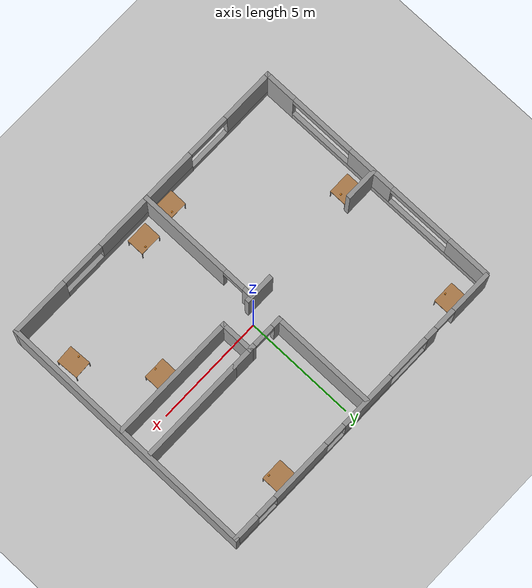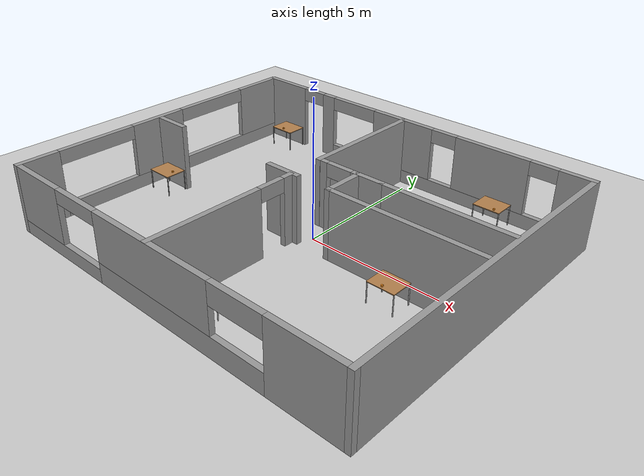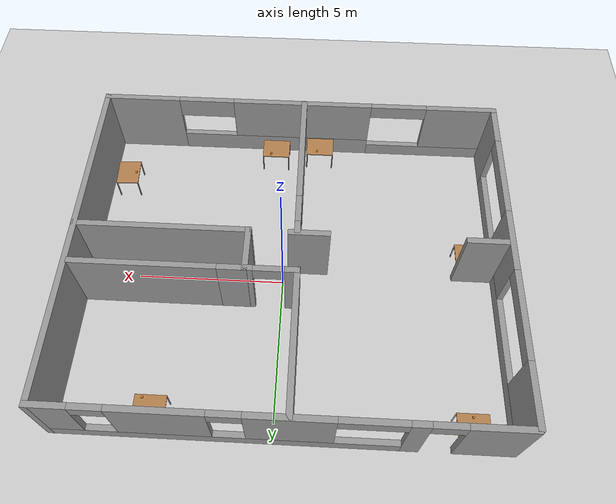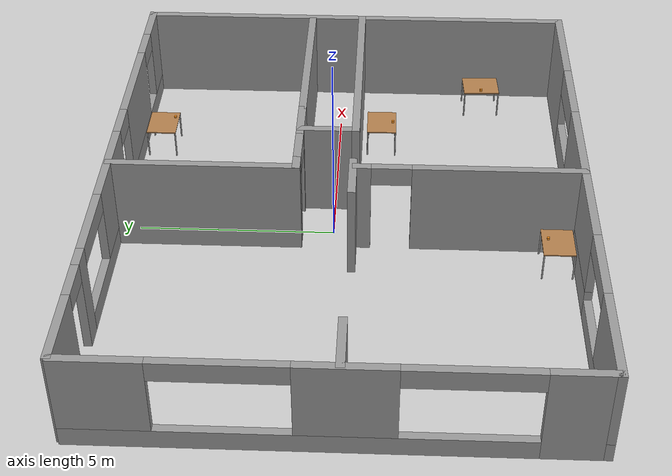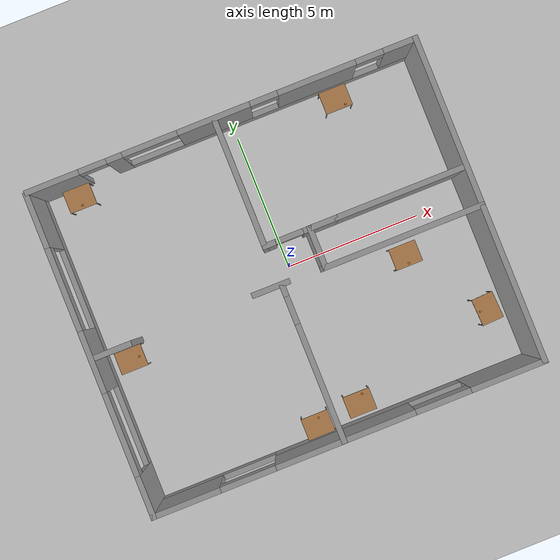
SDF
<sdf version="1.4">
 <world name="default">
  <light name="sun" type="directional">
   <pose>0 0 10 0 -0 0</pose>
   <diffuse>0.8 0.8 0.8 1</diffuse>
   <specular>0.2 0.2 0.2 1</specular>
   <attenuation>
    <range>1000</range>
    <constant>0.9</constant>
    <linear>0.01</linear>
    <quadratic>0.001</quadratic>
   </attenuation>
   <direction>-0.5 0.1 -0.9</direction>
  </light>
  <model name="ground_plane">
   <static>1</static>
   <link name="link">
    <collision name="collision">
     <geometry><plane><normal>0 0 1</normal><size>100 100</size></plane></geometry>
     <surface><friction><ode><mu>100</mu><mu2>50</mu2></ode></friction></surface>
    </collision>
    <visual name="visual">
     <cast_shadows>0</cast_shadows>
     <geometry><plane><normal>0 0 1</normal><size>100 100</size></plane></geometry>
     <material>
      <script><uri>file://media/materials/scripts/gazebo.material</uri><name>Gazebo/Grey</name></script>
     </material>
    </visual>
    <velocity_decay><linear>0</linear><angular>0</angular></velocity_decay>
   </link>
  </model>
  <physics type="ode">
   <max_step_size>0.001</max_step_size>
   <real_time_factor>1</real_time_factor>
   <real_time_update_rate>1000</real_time_update_rate>
   <gravity>0 0 -9.8</gravity>
  </physics>
  <scene><ambient>0.4 0.4 0.4 1</ambient><background>0.7 0.7 0.7 1</background><shadows>1</shadows></scene>
  <model name="ubrhome">
   <link name="Wall_11">
    <collision name="Wall_11_Collision">
     <geometry><box><size>4.81137 0.2 2.5</size></box></geometry>
     <pose>0 0 1.25 0 -0 0</pose>
    </collision>
    <visual name="Wall_11_Visual">
     <pose>0 0 1.25 0 -0 0</pose>
     <geometry><box><size>4.81137 0.2 2.5</size></box></geometry>
     <material>
      <script><uri>file://media/materials/scripts/gazebo.material</uri><name>Gazebo/Grey</name></script>
     </material>
    </visual>
    <velocity_decay><linear>0</linear><angular>0</angular></velocity_decay>
    <pose>0.572091 1.60248 0 0 0 -1.5708</pose>
   </link>
   <link name="Wall_13">
    <collision name="Wall_13_Collision">
     <geometry><box><size>1.38413 0.2 2.5</size></box></geometry>
     <pose>0 0 1.25 0 -0 0</pose>
    </collision>
    <visual name="Wall_13_Visual">
     <pose>0 0 1.25 0 -0 0</pose>
     <geometry><box><size>1.38413 0.2 2.5</size></box></geometry>
     <material>
      <script><uri>file://media/materials/scripts/gazebo.material</uri><name>Gazebo/Grey</name></script>
     </material>
    </visual>
    <velocity_decay><linear>0</linear><angular>0</angular></velocity_decay>
    <pose>0.245062 -2.08964 0 0 -0 3.14159</pose>
   </link>
   <link name="Wall_15">
    <collision name="Wall_15_Collision">
     <geometry><box><size>1.5133 0.2 2.5</size></box></geometry>
     <pose>0 0 1.25 0 -0 0</pose>
    </collision>
    <visual name="Wall_15_Visual">
     <pose>0 0 1.25 0 -0 0</pose>
     <geometry><box><size>1.5133 0.2 2.5</size></box></geometry>
     <material>
      <script><uri>file://media/materials/scripts/gazebo.material</uri><name>Gazebo/Grey</name></script>
     </material>
    </visual>
    <velocity_decay><linear>0</linear><angular>0</angular></velocity_decay>
    <pose>-5.53973 -2.06637 0 0 -0 0</pose>
   </link>
   <link name="Wall_17">
    <pose>0.632057 -4.95392 0 0 0 -1.5708</pose>
    <visual name="Wall_17_Visual_0">
     <pose>-2.65152 0 1.25 0 -0 0</pose>
     <geometry><box><size>0.465914 0.2 2.5</size></box></geometry>
     <material>
      <script><uri>file://media/materials/scripts/gazebo.material</uri><name>Gazebo/Grey</name></script>
     </material>
    </visual>
    <collision name="Wall_17_Collision_0">
     <geometry><box><size>0.465914 0.2 2.5</size></box></geometry>
     <pose>-2.65152 0 1.25 0 -0 0</pose>
    </collision>
    <visual name="Wall_17_Visual_1">
     <pose>0.732957 0 1.25 0 -0 0</pose>
     <geometry><box><size>4.30304 0.2 2.5</size></box></geometry>
     <material>
      <script><uri>file://media/materials/scripts/gazebo.material</uri><name>Gazebo/Grey</name></script>
     </material>
    </visual>
    <collision name="Wall_17_Collision_1">
     <geometry><box><size>4.30304 0.2 2.5</size></box></geometry>
     <pose>0.732957 0 1.25 0 -0 0</pose>
    </collision>
    <visual name="Wall_17_Visual_2">
     <pose>-1.91856 0 2.25 0 -0 0</pose>
     <geometry><box><size>1 0.2 0.5</size></box></geometry>
     <material>
      <script><uri>file://media/materials/scripts/gazebo.material</uri><name>Gazebo/Grey</name></script>
     </material>
    </visual>
    <collision name="Wall_17_Collision_2">
     <geometry><box><size>1 0.2 0.5</size></box></geometry>
     <pose>-1.91856 0 2.25 0 -0 0</pose>
    </collision>
    <velocity_decay><linear>0</linear><angular>0</angular></velocity_decay>
   </link>
   <link name="Wall_19">
    <collision name="Wall_19_Collision">
     <geometry><box><size>5.86812 0.2 2.5</size></box></geometry>
     <pose>0 0 1.25 0 -0 0</pose>
    </collision>
    <visual name="Wall_19_Visual">
     <pose>0 0 1.25 0 -0 0</pose>
     <geometry><box><size>5.86812 0.2 2.5</size></box></geometry>
     <material>
      <script><uri>file://media/materials/scripts/gazebo.material</uri><name>Gazebo/Grey</name></script>
     </material>
    </visual>
    <velocity_decay><linear>0</linear><angular>0</angular></velocity_decay>
    <pose>5.04379 -2.1121 0 0 -0 3.14159</pose>
   </link>
   <link name="Wall_20">
    <collision name="Wall_20_Collision">
     <geometry><box><size>1.60857 0.2 2.5</size></box></geometry>
     <pose>0 0 1.25 0 -0 0</pose>
    </collision>
    <visual name="Wall_20_Visual">
     <pose>0 0 1.25 0 -0 0</pose>
     <geometry><box><size>1.60857 0.2 2.5</size></box></geometry>
     <material>
      <script><uri>file://media/materials/scripts/gazebo.material</uri><name>Gazebo/Grey</name></script>
     </material>
    </visual>
    <velocity_decay><linear>0</linear><angular>0</angular></velocity_decay>
    <pose>2.20973 -1.40781 0 0 -0 1.5708</pose>
   </link>
   <link name="Wall_22">
    <pose>1.37419 -0.698783 0 0 -0 0</pose>
    <visual name="Wall_22_Visual_0">
     <pose>-0.650736 0 1.25 0 -0 0</pose>
     <geometry><box><size>0.481438 0.2 2.5</size></box></geometry>
     <material>
      <script><uri>file://media/materials/scripts/gazebo.material</uri><name>Gazebo/Grey</name></script>
     </material>
    </visual>
    <collision name="Wall_22_Collision_0">
     <geometry><box><size>0.481438 0.2 2.5</size></box></geometry>
     <pose>-0.650736 0 1.25 0 -0 0</pose>
    </collision>
    <visual name="Wall_22_Visual_1">
     <pose>0.740719 0 1.25 0 -0 0</pose>
     <geometry><box><size>0.301472 0.2 2.5</size></box></geometry>
     <material>
      <script><uri>file://media/materials/scripts/gazebo.material</uri><name>Gazebo/Grey</name></script>
     </material>
    </visual>
    <collision name="Wall_22_Collision_1">
     <geometry><box><size>0.301472 0.2 2.5</size></box></geometry>
     <pose>0.740719 0 1.25 0 -0 0</pose>
    </collision>
    <visual name="Wall_22_Visual_2">
     <pose>0.089983 0 2.25 0 -0 0</pose>
     <geometry><box><size>1 0.2 0.5</size></box></geometry>
     <material>
      <script><uri>file://media/materials/scripts/gazebo.material</uri><name>Gazebo/Grey</name></script>
     </material>
    </visual>
    <collision name="Wall_22_Collision_2">
     <geometry><box><size>1 0.2 0.5</size></box></geometry>
     <pose>0.089983 0 2.25 0 -0 0</pose>
    </collision>
    <velocity_decay><linear>0</linear><angular>0</angular></velocity_decay>
   </link>
   <link name="Wall_24">
    <collision name="Wall_24_Collision">
     <geometry><box><size>1.07677 0.2 2.5</size></box></geometry>
     <pose>0 0 1.25 0 -0 0</pose>
    </collision>
    <visual name="Wall_24_Visual">
     <pose>0 0 1.25 0 -0 0</pose>
     <geometry><box><size>1.07677 0.2 2.5</size></box></geometry>
     <material>
      <script><uri>file://media/materials/scripts/gazebo.material</uri><name>Gazebo/Grey</name></script>
     </material>
    </visual>
    <velocity_decay><linear>0</linear><angular>0</angular></velocity_decay>
    <pose>2.67655 -0.694813 0 0 -0 3.14159</pose>
   </link>
   <link name="Wall_26">
    <collision name="Wall_26_Collision">
     <geometry><box><size>4.73768 0.2 2.5</size></box></geometry>
     <pose>0 0 1.25 0 -0 0</pose>
    </collision>
    <visual name="Wall_26_Visual">
     <pose>0 0 1.25 0 -0 0</pose>
     <geometry><box><size>4.73768 0.2 2.5</size></box></geometry>
     <material>
      <script><uri>file://media/materials/scripts/gazebo.material</uri><name>Gazebo/Grey</name></script>
     </material>
    </visual>
    <velocity_decay><linear>0</linear><angular>0</angular></velocity_decay>
    <pose>5.46068 -0.694813 0 0 -0 3.14159</pose>
   </link>
   <link name="Wall_6">
    <pose>0.853485 3.93851 0 0 -0 0</pose>
    <visual name="Wall_6_Visual_0">
     <pose>-6.15803 0 1.25 0 -0 0</pose>
     <geometry><box><size>1.95545 0.2 2.5</size></box></geometry>
     <material>
      <script><uri>file://media/materials/scripts/gazebo.material</uri><name>Gazebo/Grey</name></script>
     </material>
    </visual>
    <collision name="Wall_6_Collision_0">
     <geometry><box><size>1.95545 0.2 2.5</size></box></geometry>
     <pose>-6.15803 0 1.25 0 -0 0</pose>
    </collision>
    <visual name="Wall_6_Visual_1">
     <pose>-3.89501 0 1.25 0 -0 0</pose>
     <geometry><box><size>0.570596 0.2 2.5</size></box></geometry>
     <material>
      <script><uri>file://media/materials/scripts/gazebo.material</uri><name>Gazebo/Grey</name></script>
     </material>
    </visual>
    <collision name="Wall_6_Collision_1">
     <geometry><box><size>0.570596 0.2 2.5</size></box></geometry>
     <pose>-3.89501 0 1.25 0 -0 0</pose>
    </collision>
    <visual name="Wall_6_Visual_2">
     <pose>1.76302 0 0.25 0 -0 0</pose>
     <geometry><box><size>10.7455 0.2 0.5</size></box></geometry>
     <material>
      <script><uri>file://media/materials/scripts/gazebo.material</uri><name>Gazebo/Grey</name></script>
     </material>
    </visual>
    <collision name="Wall_6_Collision_2">
     <geometry><box><size>10.7455 0.2 0.5</size></box></geometry>
     <pose>1.76302 0 0.25 0 -0 0</pose>
    </collision>
    <visual name="Wall_6_Visual_3">
     <pose>-0.293365 0 1.5 0 -0 0</pose>
     <geometry><box><size>2.63269 0.2 2</size></box></geometry>
     <material>
      <script><uri>file://media/materials/scripts/gazebo.material</uri><name>Gazebo/Grey</name></script>
     </material>
    </visual>
    <collision name="Wall_6_Collision_3">
     <geometry><box><size>2.63269 0.2 2</size></box></geometry>
     <pose>-0.293365 0 1.5 0 -0 0</pose>
    </collision>
    <visual name="Wall_6_Visual_4">
     <pose>3.44129 0 1.5 0 -0 0</pose>
     <geometry><box><size>2.83663 0.2 2</size></box></geometry>
     <material>
      <script><uri>file://media/materials/scripts/gazebo.material</uri><name>Gazebo/Grey</name></script>
     </material>
    </visual>
    <collision name="Wall_6_Collision_4">
     <geometry><box><size>2.83663 0.2 2</size></box></geometry>
     <pose>3.44129 0 1.5 0 -0 0</pose>
    </collision>
    <visual name="Wall_6_Visual_5">
     <pose>6.49768 0 1.5 0 -0 0</pose>
     <geometry><box><size>1.27615 0.2 2</size></box></geometry>
     <material>
      <script><uri>file://media/materials/scripts/gazebo.material</uri><name>Gazebo/Grey</name></script>
     </material>
    </visual>
    <collision name="Wall_6_Collision_5">
     <geometry><box><size>1.27615 0.2 2</size></box></geometry>
     <pose>6.49768 0 1.5 0 -0 0</pose>
    </collision>
    <visual name="Wall_6_Visual_6">
     <pose>-4.6803 0 2.25 0 -0 0</pose>
     <geometry><box><size>1 0.2 0.5</size></box></geometry>
     <material>
      <script><uri>file://media/materials/scripts/gazebo.material</uri><name>Gazebo/Grey</name></script>
     </material>
    </visual>
    <collision name="Wall_6_Collision_6">
     <geometry><box><size>1 0.2 0.5</size></box></geometry>
     <pose>-4.6803 0 2.25 0 -0 0</pose>
    </collision>
    <visual name="Wall_6_Visual_7">
     <pose>-2.60971 0 2.25 0 -0 0</pose>
     <geometry><box><size>2 0.2 0.5</size></box></geometry>
     <material>
      <script><uri>file://media/materials/scripts/gazebo.material</uri><name>Gazebo/Grey</name></script>
     </material>
    </visual>
    <collision name="Wall_6_Collision_7">
     <geometry><box><size>2 0.2 0.5</size></box></geometry>
     <pose>-2.60971 0 2.25 0 -0 0</pose>
    </collision>
    <visual name="Wall_6_Visual_8">
     <pose>1.52298 0 2.25 0 -0 0</pose>
     <geometry><box><size>1 0.2 0.5</size></box></geometry>
     <material>
      <script><uri>file://media/materials/scripts/gazebo.material</uri><name>Gazebo/Grey</name></script>
     </material>
    </visual>
    <collision name="Wall_6_Collision_8">
     <geometry><box><size>1 0.2 0.5</size></box></geometry>
     <pose>1.52298 0 2.25 0 -0 0</pose>
    </collision>
    <visual name="Wall_6_Visual_9">
     <pose>5.3596 0 2.25 0 -0 0</pose>
     <geometry><box><size>1 0.2 0.5</size></box></geometry>
     <material>
      <script><uri>file://media/materials/scripts/gazebo.material</uri><name>Gazebo/Grey</name></script>
     </material>
    </visual>
    <collision name="Wall_6_Collision_9">
     <geometry><box><size>1 0.2 0.5</size></box></geometry>
     <pose>5.3596 0 2.25 0 -0 0</pose>
    </collision>
    <velocity_decay><linear>0</linear><angular>0</angular></velocity_decay>
   </link>
   <link name="Wall_7">
    <collision name="Wall_7_Collision">
     <geometry><box><size>11.8855 0.2 2.5</size></box></geometry>
     <pose>0 0 1.25 0 -0 0</pose>
    </collision>
    <visual name="Wall_7_Visual">
     <pose>0 0 1.25 0 -0 0</pose>
     <geometry><box><size>11.8855 0.2 2.5</size></box></geometry>
     <material>
      <script><uri>file://media/materials/scripts/gazebo.material</uri><name>Gazebo/Grey</name></script>
     </material>
    </visual>
    <velocity_decay><linear>0</linear><angular>0</angular></velocity_decay>
    <pose>7.88924 -1.90422 0 0 0 -1.5708</pose>
   </link>
   <link name="Wall_8">
    <pose>0.822895 -7.74695 0 0 -0 3.14159</pose>
    <visual name="Wall_8_Visual_0">
     <pose>-5.78564 0 1.25 0 -0 0</pose>
     <geometry><box><size>2.76143 0.2 2.5</size></box></geometry>
     <material>
      <script><uri>file://media/materials/scripts/gazebo.material</uri><name>Gazebo/Grey</name></script>
     </material>
    </visual>
    <collision name="Wall_8_Collision_0">
     <geometry><box><size>2.76143 0.2 2.5</size></box></geometry>
     <pose>-5.78564 0 1.25 0 -0 0</pose>
    </collision>
    <visual name="Wall_8_Visual_1">
     <pose>-0.880608 0 0.375 0 -0 0</pose>
     <geometry><box><size>7.04863 0.2 0.75</size></box></geometry>
     <material>
      <script><uri>file://media/materials/scripts/gazebo.material</uri><name>Gazebo/Grey</name></script>
     </material>
    </visual>
    <collision name="Wall_8_Collision_1">
     <geometry><box><size>7.04863 0.2 0.75</size></box></geometry>
     <pose>-0.880608 0 0.375 0 -0 0</pose>
    </collision>
    <visual name="Wall_8_Visual_2">
     <pose>4.90503 0 0.25 0 -0 0</pose>
     <geometry><box><size>4.52264 0.2 0.5</size></box></geometry>
     <material>
      <script><uri>file://media/materials/scripts/gazebo.material</uri><name>Gazebo/Grey</name></script>
     </material>
    </visual>
    <collision name="Wall_8_Collision_2">
     <geometry><box><size>4.52264 0.2 0.5</size></box></geometry>
     <pose>4.90503 0 0.25 0 -0 0</pose>
    </collision>
    <visual name="Wall_8_Visual_3">
     <pose>5.90503 0 1.5 0 -0 0</pose>
     <geometry><box><size>2.52264 0.2 2</size></box></geometry>
     <material>
      <script><uri>file://media/materials/scripts/gazebo.material</uri><name>Gazebo/Grey</name></script>
     </material>
    </visual>
    <collision name="Wall_8_Collision_3">
     <geometry><box><size>2.52264 0.2 2</size></box></geometry>
     <pose>5.90503 0 1.5 0 -0 0</pose>
    </collision>
    <visual name="Wall_8_Visual_4">
     <pose>0.119392 0 1.625 0 -0 0</pose>
     <geometry><box><size>5.04863 0.2 1.75</size></box></geometry>
     <material>
      <script><uri>file://media/materials/scripts/gazebo.material</uri><name>Gazebo/Grey</name></script>
     </material>
    </visual>
    <collision name="Wall_8_Collision_4">
     <geometry><box><size>5.04863 0.2 1.75</size></box></geometry>
     <pose>0.119392 0 1.625 0 -0 0</pose>
    </collision>
    <visual name="Wall_8_Visual_5">
     <pose>-3.40492 0 2.125 0 -0 0</pose>
     <geometry><box><size>2 0.2 0.75</size></box></geometry>
     <material>
      <script><uri>file://media/materials/scripts/gazebo.material</uri><name>Gazebo/Grey</name></script>
     </material>
    </visual>
    <collision name="Wall_8_Collision_5">
     <geometry><box><size>2 0.2 0.75</size></box></geometry>
     <pose>-3.40492 0 2.125 0 -0 0</pose>
    </collision>
    <visual name="Wall_8_Visual_6">
     <pose>3.64371 0 2.25 0 -0 0</pose>
     <geometry><box><size>2 0.2 0.5</size></box></geometry>
     <material>
      <script><uri>file://media/materials/scripts/gazebo.material</uri><name>Gazebo/Grey</name></script>
     </material>
    </visual>
    <collision name="Wall_8_Collision_6">
     <geometry><box><size>2 0.2 0.5</size></box></geometry>
     <pose>3.64371 0 2.25 0 -0 0</pose>
    </collision>
    <velocity_decay><linear>0</linear><angular>0</angular></velocity_decay>
   </link>
   <link name="Wall_9">
    <pose>-6.24345 -1.93481 0 0 -0 1.5708</pose>
    <visual name="Wall_9_Visual_0">
     <pose>-5.13403 0 1.25 0 -0 0</pose>
     <geometry><box><size>1.55624 0.2 2.5</size></box></geometry>
     <material>
      <script><uri>file://media/materials/scripts/gazebo.material</uri><name>Gazebo/Grey</name></script>
     </material>
    </visual>
    <collision name="Wall_9_Collision_0">
     <geometry><box><size>1.55624 0.2 2.5</size></box></geometry>
     <pose>-5.13403 0 1.25 0 -0 0</pose>
    </collision>
    <visual name="Wall_9_Visual_1">
     <pose>0.77812 0 0.25 0 -0 0</pose>
     <geometry><box><size>10.2681 0.2 0.5</size></box></geometry>
     <material>
      <script><uri>file://media/materials/scripts/gazebo.material</uri><name>Gazebo/Grey</name></script>
     </material>
    </visual>
    <collision name="Wall_9_Collision_1">
     <geometry><box><size>10.2681 0.2 0.5</size></box></geometry>
     <pose>0.77812 0 0.25 0 -0 0</pose>
    </collision>
    <visual name="Wall_9_Visual_2">
     <pose>-0.239232 0 1.5 0 -0 0</pose>
     <geometry><box><size>2.23335 0.2 2</size></box></geometry>
     <material>
      <script><uri>file://media/materials/scripts/gazebo.material</uri><name>Gazebo/Grey</name></script>
     </material>
    </visual>
    <collision name="Wall_9_Collision_2">
     <geometry><box><size>2.23335 0.2 2</size></box></geometry>
     <pose>-0.239232 0 1.5 0 -0 0</pose>
    </collision>
    <visual name="Wall_9_Visual_3">
     <pose>4.8948 0 1.5 0 -0 0</pose>
     <geometry><box><size>2.03471 0.2 2</size></box></geometry>
     <material>
      <script><uri>file://media/materials/scripts/gazebo.material</uri><name>Gazebo/Grey</name></script>
     </material>
    </visual>
    <collision name="Wall_9_Collision_3">
     <geometry><box><size>2.03471 0.2 2</size></box></geometry>
     <pose>4.8948 0 1.5 0 -0 0</pose>
    </collision>
    <visual name="Wall_9_Visual_4">
     <pose>-2.85591 0 2.25 0 -0 0</pose>
     <geometry><box><size>3 0.2 0.5</size></box></geometry>
     <material>
      <script><uri>file://media/materials/scripts/gazebo.material</uri><name>Gazebo/Grey</name></script>
     </material>
    </visual>
    <collision name="Wall_9_Collision_4">
     <geometry><box><size>3 0.2 0.5</size></box></geometry>
     <pose>-2.85591 0 2.25 0 -0 0</pose>
    </collision>
    <visual name="Wall_9_Visual_5">
     <pose>2.37744 0 2.25 0 -0 0</pose>
     <geometry><box><size>3 0.2 0.5</size></box></geometry>
     <material>
      <script><uri>file://media/materials/scripts/gazebo.material</uri><name>Gazebo/Grey</name></script>
     </material>
    </visual>
    <collision name="Wall_9_Collision_5">
     <geometry><box><size>3 0.2 0.5</size></box></geometry>
     <pose>2.37744 0 2.25 0 -0 0</pose>
    </collision>
    <velocity_decay><linear>0</linear><angular>0</angular></velocity_decay>
   </link>
   <static>1</static>
   <pose>-1.09689 1.58673 0 0 -0 0</pose>
  </model>
  <spherical_coordinates>
   <surface_model>EARTH_WGS84</surface_model>
   <latitude_deg>0</latitude_deg>
   <longitude_deg>0</longitude_deg>
   <elevation>0</elevation>
   <heading_deg>0</heading_deg>
  </spherical_coordinates>
  <model name="table">
   <static>1</static>
   <link name="link">
    <collision name="surface">
     <pose>0 0 0.762 0 -0 0</pose>
     <geometry><box><size>1 0.8 0.03</size></box></geometry>
    </collision>
    <visual name="visual1">
     <pose>0 0 0.762 0 -0 0</pose>
     <geometry><box><size>1 0.8 0.03</size></box></geometry>
     <material>
      <script><uri>file://media/materials/scripts/gazebo.material</uri><name>Gazebo/Wood</name></script>
     </material>
    </visual>
    <collision name="front_left_leg">
     <pose>0.48 0.38 0.381 0 -0 0</pose>
     <geometry><cylinder><radius>0.02</radius><length>0.762</length></cylinder></geometry>
    </collision>
    <visual name="front_left_leg">
     <pose>0.48 0.38 0.381 0 -0 0</pose>
     <geometry><cylinder><radius>0.02</radius><length>0.762</length></cylinder></geometry>
     <material>
      <script><uri>file://media/materials/scripts/gazebo.material</uri><name>Gazebo/Grey</name></script>
     </material>
    </visual>
    <collision name="front_right_leg">
     <pose>0.48 -0.38 0.381 0 -0 0</pose>
     <geometry><cylinder><radius>0.02</radius><length>0.762</length></cylinder></geometry>
    </collision>
    <visual name="front_right_leg">
     <pose>0.48 -0.38 0.381 0 -0 0</pose>
     <geometry><cylinder><radius>0.02</radius><length>0.762</length></cylinder></geometry>
     <material>
      <script><uri>file://media/materials/scripts/gazebo.material</uri><name>Gazebo/Grey</name></script>
     </material>
    </visual>
    <collision name="back_right_leg">
     <pose>-0.48 -0.38 0.381 0 -0 0</pose>
     <geometry><cylinder><radius>0.02</radius><length>0.762</length></cylinder></geometry>
    </collision>
    <visual name="back_right_leg">
     <pose>-0.48 -0.38 0.381 0 -0 0</pose>
     <geometry><cylinder><radius>0.02</radius><length>0.762</length></cylinder></geometry>
     <material>
      <script><uri>file://media/materials/scripts/gazebo.material</uri><name>Gazebo/Grey</name></script>
     </material>
    </visual>
    <collision name="back_left_leg">
     <pose>-0.48 0.38 0.381 0 -0 0</pose>
     <geometry><cylinder><radius>0.02</radius><length>0.762</length></cylinder></geometry>
    </collision>
    <visual name="back_left_leg">
     <pose>-0.48 0.38 0.381 0 -0 0</pose>
     <geometry><cylinder><radius>0.02</radius><length>0.762</length></cylinder></geometry>
     <material>
      <script><uri>file://media/materials/scripts/gazebo.material</uri><name>Gazebo/Grey</name></script>
     </material>
    </visual>
    <velocity_decay><linear>0</linear><angular>0</angular></velocity_decay>
   </link>
   <pose>3.74965 4.9176 0 0 -0 0</pose>
  </model>
  <model name="table_0">
   <static>1</static>
   <link name="link">
    <collision name="surface">
     <pose>0 0 0.762 0 -0 0</pose>
     <geometry><box><size>1 0.8 0.03</size></box></geometry>
    </collision>
    <visual name="visual1">
     <pose>0 0 0.762 0 -0 0</pose>
     <geometry><box><size>1 0.8 0.03</size></box></geometry>
     <material>
      <script><uri>file://media/materials/scripts/gazebo.material</uri><name>Gazebo/Wood</name></script>
     </material>
    </visual>
    <collision name="front_left_leg">
     <pose>0.48 0.38 0.381 0 -0 0</pose>
     <geometry><cylinder><radius>0.02</radius><length>0.762</length></cylinder></geometry>
    </collision>
    <visual name="front_left_leg">
     <pose>0.48 0.38 0.381 0 -0 0</pose>
     <geometry><cylinder><radius>0.02</radius><length>0.762</length></cylinder></geometry>
     <material>
      <script><uri>file://media/materials/scripts/gazebo.material</uri><name>Gazebo/Grey</name></script>
     </material>
    </visual>
    <collision name="front_right_leg">
     <pose>0.48 -0.38 0.381 0 -0 0</pose>
     <geometry><cylinder><radius>0.02</radius><length>0.762</length></cylinder></geometry>
    </collision>
    <visual name="front_right_leg">
     <pose>0.48 -0.38 0.381 0 -0 0</pose>
     <geometry><cylinder><radius>0.02</radius><length>0.762</length></cylinder></geometry>
     <material>
      <script><uri>file://media/materials/scripts/gazebo.material</uri><name>Gazebo/Grey</name></script>
     </material>
    </visual>
    <collision name="back_right_leg">
     <pose>-0.48 -0.38 0.381 0 -0 0</pose>
     <geometry><cylinder><radius>0.02</radius><length>0.762</length></cylinder></geometry>
    </collision>
    <visual name="back_right_leg">
     <pose>-0.48 -0.38 0.381 0 -0 0</pose>
     <geometry><cylinder><radius>0.02</radius><length>0.762</length></cylinder></geometry>
     <material>
      <script><uri>file://media/materials/scripts/gazebo.material</uri><name>Gazebo/Grey</name></script>
     </material>
    </visual>
    <collision name="back_left_leg">
     <pose>-0.48 0.38 0.381 0 -0 0</pose>
     <geometry><cylinder><radius>0.02</radius><length>0.762</length></cylinder></geometry>
    </collision>
    <visual name="back_left_leg">
     <pose>-0.48 0.38 0.381 0 -0 0</pose>
     <geometry><cylinder><radius>0.02</radius><length>0.762</length></cylinder></geometry>
     <material>
      <script><uri>file://media/materials/scripts/gazebo.material</uri><name>Gazebo/Grey</name></script>
     </material>
    </visual>
    <velocity_decay><linear>0</linear><angular>0</angular></velocity_decay>
   </link>
   <pose>4 -1.16622 0 0 -0 0</pose>
  </model>
  <model name="table_1">
   <static>1</static>
   <link name="link">
    <collision name="surface">
     <pose>0 0 0.762 0 -0 0</pose>
     <geometry><box><size>1 0.8 0.03</size></box></geometry>
    </collision>
    <visual name="visual1">
     <pose>0 0 0.762 0 -0 0</pose>
     <geometry><box><size>1 0.8 0.03</size></box></geometry>
     <material>
      <script><uri>file://media/materials/scripts/gazebo.material</uri><name>Gazebo/Wood</name></script>
     </material>
    </visual>
    <collision name="front_left_leg">
     <pose>0.48 0.38 0.381 0 -0 0</pose>
     <geometry><cylinder><radius>0.02</radius><length>0.762</length></cylinder></geometry>
    </collision>
    <visual name="front_left_leg">
     <pose>0.48 0.38 0.381 0 -0 0</pose>
     <geometry><cylinder><radius>0.02</radius><length>0.762</length></cylinder></geometry>
     <material>
      <script><uri>file://media/materials/scripts/gazebo.material</uri><name>Gazebo/Grey</name></script>
     </material>
    </visual>
    <collision name="front_right_leg">
     <pose>0.48 -0.38 0.381 0 -0 0</pose>
     <geometry><cylinder><radius>0.02</radius><length>0.762</length></cylinder></geometry>
    </collision>
    <visual name="front_right_leg">
     <pose>0.48 -0.38 0.381 0 -0 0</pose>
     <geometry><cylinder><radius>0.02</radius><length>0.762</length></cylinder></geometry>
     <material>
      <script><uri>file://media/materials/scripts/gazebo.material</uri><name>Gazebo/Grey</name></script>
     </material>
    </visual>
    <collision name="back_right_leg">
     <pose>-0.48 -0.38 0.381 0 -0 0</pose>
     <geometry><cylinder><radius>0.02</radius><length>0.762</length></cylinder></geometry>
    </collision>
    <visual name="back_right_leg">
     <pose>-0.48 -0.38 0.381 0 -0 0</pose>
     <geometry><cylinder><radius>0.02</radius><length>0.762</length></cylinder></geometry>
     <material>
      <script><uri>file://media/materials/scripts/gazebo.material</uri><name>Gazebo/Grey</name></script>
     </material>
    </visual>
    <collision name="back_left_leg">
     <pose>-0.48 0.38 0.381 0 -0 0</pose>
     <geometry><cylinder><radius>0.02</radius><length>0.762</length></cylinder></geometry>
    </collision>
    <visual name="back_left_leg">
     <pose>-0.48 0.38 0.381 0 -0 0</pose>
     <geometry><cylinder><radius>0.02</radius><length>0.762</length></cylinder></geometry>
     <material>
      <script><uri>file://media/materials/scripts/gazebo.material</uri><name>Gazebo/Grey</name></script>
     </material>
    </visual>
    <velocity_decay><linear>0</linear><angular>0</angular></velocity_decay>
   </link>
   <pose>0.544836 -5.43417 0 0 -0 0</pose>
  </model>
  <model name="table_2">
   <static>1</static>
   <link name="link">
    <collision name="surface">
     <pose>0 0 0.762 0 -0 0</pose>
     <geometry><box><size>1 0.8 0.03</size></box></geometry>
    </collision>
    <visual name="visual1">
     <pose>0 0 0.762 0 -0 0</pose>
     <geometry><box><size>1 0.8 0.03</size></box></geometry>
     <material>
      <script><uri>file://media/materials/scripts/gazebo.material</uri><name>Gazebo/Wood</name></script>
     </material>
    </visual>
    <collision name="front_left_leg">
     <pose>0.48 0.38 0.381 0 -0 0</pose>
     <geometry><cylinder><radius>0.02</radius><length>0.762</length></cylinder></geometry>
    </collision>
    <visual name="front_left_leg">
     <pose>0.48 0.38 0.381 0 -0 0</pose>
     <geometry><cylinder><radius>0.02</radius><length>0.762</length></cylinder></geometry>
     <material>
      <script><uri>file://media/materials/scripts/gazebo.material</uri><name>Gazebo/Grey</name></script>
     </material>
    </visual>
    <collision name="front_right_leg">
     <pose>0.48 -0.38 0.381 0 -0 0</pose>
     <geometry><cylinder><radius>0.02</radius><length>0.762</length></cylinder></geometry>
    </collision>
    <visual name="front_right_leg">
     <pose>0.48 -0.38 0.381 0 -0 0</pose>
     <geometry><cylinder><radius>0.02</radius><length>0.762</length></cylinder></geometry>
     <material>
      <script><uri>file://media/materials/scripts/gazebo.material</uri><name>Gazebo/Grey</name></script>
     </material>
    </visual>
    <collision name="back_right_leg">
     <pose>-0.48 -0.38 0.381 0 -0 0</pose>
     <geometry><cylinder><radius>0.02</radius><length>0.762</length></cylinder></geometry>
    </collision>
    <visual name="back_right_leg">
     <pose>-0.48 -0.38 0.381 0 -0 0</pose>
     <geometry><cylinder><radius>0.02</radius><length>0.762</length></cylinder></geometry>
     <material>
      <script><uri>file://media/materials/scripts/gazebo.material</uri><name>Gazebo/Grey</name></script>
     </material>
    </visual>
    <collision name="back_left_leg">
     <pose>-0.48 0.38 0.381 0 -0 0</pose>
     <geometry><cylinder><radius>0.02</radius><length>0.762</length></cylinder></geometry>
    </collision>
    <visual name="back_left_leg">
     <pose>-0.48 0.38 0.381 0 -0 0</pose>
     <geometry><cylinder><radius>0.02</radius><length>0.762</length></cylinder></geometry>
     <material>
      <script><uri>file://media/materials/scripts/gazebo.material</uri><name>Gazebo/Grey</name></script>
     </material>
    </visual>
    <velocity_decay><linear>0</linear><angular>0</angular></velocity_decay>
   </link>
   <pose>-1.11726 -5.61106 0 0 -0 0</pose>
  </model>
  <model name="table_3">
   <static>1</static>
   <link name="link">
    <collision name="surface">
     <pose>0 0 0.762 0 -0 0</pose>
     <geometry><box><size>1 0.8 0.03</size></box></geometry>
    </collision>
    <visual name="visual1">
     <pose>0 0 0.762 0 -0 0</pose>
     <geometry><box><size>1 0.8 0.03</size></box></geometry>
     <material>
      <script><uri>file://media/materials/scripts/gazebo.material</uri><name>Gazebo/Wood</name></script>
     </material>
    </visual>
    <collision name="front_left_leg">
     <pose>0.48 0.38 0.381 0 -0 0</pose>
     <geometry><cylinder><radius>0.02</radius><length>0.762</length></cylinder></geometry>
    </collision>
    <visual name="front_left_leg">
     <pose>0.48 0.38 0.381 0 -0 0</pose>
     <geometry><cylinder><radius>0.02</radius><length>0.762</length></cylinder></geometry>
     <material>
      <script><uri>file://media/materials/scripts/gazebo.material</uri><name>Gazebo/Grey</name></script>
     </material>
    </visual>
    <collision name="front_right_leg">
     <pose>0.48 -0.38 0.381 0 -0 0</pose>
     <geometry><cylinder><radius>0.02</radius><length>0.762</length></cylinder></geometry>
    </collision>
    <visual name="front_right_leg">
     <pose>0.48 -0.38 0.381 0 -0 0</pose>
     <geometry><cylinder><radius>0.02</radius><length>0.762</length></cylinder></geometry>
     <material>
      <script><uri>file://media/materials/scripts/gazebo.material</uri><name>Gazebo/Grey</name></script>
     </material>
    </visual>
    <collision name="back_right_leg">
     <pose>-0.48 -0.38 0.381 0 -0 0</pose>
     <geometry><cylinder><radius>0.02</radius><length>0.762</length></cylinder></geometry>
    </collision>
    <visual name="back_right_leg">
     <pose>-0.48 -0.38 0.381 0 -0 0</pose>
     <geometry><cylinder><radius>0.02</radius><length>0.762</length></cylinder></geometry>
     <material>
      <script><uri>file://media/materials/scripts/gazebo.material</uri><name>Gazebo/Grey</name></script>
     </material>
    </visual>
    <collision name="back_left_leg">
     <pose>-0.48 0.38 0.381 0 -0 0</pose>
     <geometry><cylinder><radius>0.02</radius><length>0.762</length></cylinder></geometry>
    </collision>
    <visual name="back_left_leg">
     <pose>-0.48 0.38 0.381 0 -0 0</pose>
     <geometry><cylinder><radius>0.02</radius><length>0.762</length></cylinder></geometry>
     <material>
      <script><uri>file://media/materials/scripts/gazebo.material</uri><name>Gazebo/Grey</name></script>
     </material>
    </visual>
    <velocity_decay><linear>0</linear><angular>0</angular></velocity_decay>
   </link>
   <pose>6 -4 0 0 0 -1.52296</pose>
  </model>
  <model name="table_4">
   <static>1</static>
   <link name="link">
    <collision name="surface">
     <pose>0 0 0.762 0 -0 0</pose>
     <geometry><box><size>1 0.8 0.03</size></box></geometry>
    </collision>
    <visual name="visual1">
     <pose>0 0 0.762 0 -0 0</pose>
     <geometry><box><size>1 0.8 0.03</size></box></geometry>
     <material>
      <script><uri>file://media/materials/scripts/gazebo.material</uri><name>Gazebo/Wood</name></script>
     </material>
    </visual>
    <collision name="front_left_leg">
     <pose>0.48 0.38 0.381 0 -0 0</pose>
     <geometry><cylinder><radius>0.02</radius><length>0.762</length></cylinder></geometry>
    </collision>
    <visual name="front_left_leg">
     <pose>0.48 0.38 0.381 0 -0 0</pose>
     <geometry><cylinder><radius>0.02</radius><length>0.762</length></cylinder></geometry>
     <material>
      <script><uri>file://media/materials/scripts/gazebo.material</uri><name>Gazebo/Grey</name></script>
     </material>
    </visual>
    <collision name="front_right_leg">
     <pose>0.48 -0.38 0.381 0 -0 0</pose>
     <geometry><cylinder><radius>0.02</radius><length>0.762</length></cylinder></geometry>
    </collision>
    <visual name="front_right_leg">
     <pose>0.48 -0.38 0.381 0 -0 0</pose>
     <geometry><cylinder><radius>0.02</radius><length>0.762</length></cylinder></geometry>
     <material>
      <script><uri>file://media/materials/scripts/gazebo.material</uri><name>Gazebo/Grey</name></script>
     </material>
    </visual>
    <collision name="back_right_leg">
     <pose>-0.48 -0.38 0.381 0 -0 0</pose>
     <geometry><cylinder><radius>0.02</radius><length>0.762</length></cylinder></geometry>
    </collision>
    <visual name="back_right_leg">
     <pose>-0.48 -0.38 0.381 0 -0 0</pose>
     <geometry><cylinder><radius>0.02</radius><length>0.762</length></cylinder></geometry>
     <material>
      <script><uri>file://media/materials/scripts/gazebo.material</uri><name>Gazebo/Grey</name></script>
     </material>
    </visual>
    <collision name="back_left_leg">
     <pose>-0.48 0.38 0.381 0 -0 0</pose>
     <geometry><cylinder><radius>0.02</radius><length>0.762</length></cylinder></geometry>
    </collision>
    <visual name="back_left_leg">
     <pose>-0.48 0.38 0.381 0 -0 0</pose>
     <geometry><cylinder><radius>0.02</radius><length>0.762</length></cylinder></geometry>
     <material>
      <script><uri>file://media/materials/scripts/gazebo.material</uri><name>Gazebo/Grey</name></script>
     </material>
    </visual>
    <velocity_decay><linear>0</linear><angular>0</angular></velocity_decay>
   </link>
   <pose>-6 5 0 0 -0 0</pose>
  </model>
  <model name="table_5">
   <static>1</static>
   <link name="link">
    <collision name="surface">
     <pose>0 0 0.762 0 -0 0</pose>
     <geometry><box><size>1 0.8 0.03</size></box></geometry>
    </collision>
    <visual name="visual1">
     <pose>0 0 0.762 0 -0 0</pose>
     <geometry><box><size>1 0.8 0.03</size></box></geometry>
     <material>
      <script><uri>file://media/materials/scripts/gazebo.material</uri><name>Gazebo/Wood</name></script>
     </material>
    </visual>
    <collision name="front_left_leg">
     <pose>0.48 0.38 0.381 0 -0 0</pose>
     <geometry><cylinder><radius>0.02</radius><length>0.762</length></cylinder></geometry>
    </collision>
    <visual name="front_left_leg">
     <pose>0.48 0.38 0.381 0 -0 0</pose>
     <geometry><cylinder><radius>0.02</radius><length>0.762</length></cylinder></geometry>
     <material>
      <script><uri>file://media/materials/scripts/gazebo.material</uri><name>Gazebo/Grey</name></script>
     </material>
    </visual>
    <collision name="front_right_leg">
     <pose>0.48 -0.38 0.381 0 -0 0</pose>
     <geometry><cylinder><radius>0.02</radius><length>0.762</length></cylinder></geometry>
    </collision>
    <visual name="front_right_leg">
     <pose>0.48 -0.38 0.381 0 -0 0</pose>
     <geometry><cylinder><radius>0.02</radius><length>0.762</length></cylinder></geometry>
     <material>
      <script><uri>file://media/materials/scripts/gazebo.material</uri><name>Gazebo/Grey</name></script>
     </material>
    </visual>
    <collision name="back_right_leg">
     <pose>-0.48 -0.38 0.381 0 -0 0</pose>
     <geometry><cylinder><radius>0.02</radius><length>0.762</length></cylinder></geometry>
    </collision>
    <visual name="back_right_leg">
     <pose>-0.48 -0.38 0.381 0 -0 0</pose>
     <geometry><cylinder><radius>0.02</radius><length>0.762</length></cylinder></geometry>
     <material>
      <script><uri>file://media/materials/scripts/gazebo.material</uri><name>Gazebo/Grey</name></script>
     </material>
    </visual>
    <collision name="back_left_leg">
     <pose>-0.48 0.38 0.381 0 -0 0</pose>
     <geometry><cylinder><radius>0.02</radius><length>0.762</length></cylinder></geometry>
    </collision>
    <visual name="back_left_leg">
     <pose>-0.48 0.38 0.381 0 -0 0</pose>
     <geometry><cylinder><radius>0.02</radius><length>0.762</length></cylinder></geometry>
     <material>
      <script><uri>file://media/materials/scripts/gazebo.material</uri><name>Gazebo/Grey</name></script>
     </material>
    </visual>
    <velocity_decay><linear>0</linear><angular>0</angular></velocity_decay>
   </link>
   <pose>-6.41868 -1 0 0 -0 0</pose>
  </model>
  <model name="ubr_cube">
   <static>0</static>
   <link name="link">
    <inertial>
     <mass>0.25</mass>
     <inertia><ixx>0.001</ixx><ixy>0</ixy><ixz>0</ixz><iyy>0.001</iyy><iyz>0</iyz><izz>0.001</izz></inertia>
    </inertial>
    <collision name="collision">
     <geometry><box><size>0.06 0.06 0.06</size></box></geometry>
     <surface>
      <friction><ode><mu>30</mu><mu2>30</mu2></ode></friction>
      <contact><ode><kp>1e+06</kp><kd>100</kd><max_vel>1</max_vel><min_depth>0.002</min_depth></ode></contact>
     </surface>
    </collision>
    <visual name="visual">
     <geometry><box><size>0.06 0.06 0.06</size></box></geometry>
     <material>
      <script><uri>file://media/materials/scripts/gazebo.material</uri><name>Gazebo/Orange</name></script>
     </material>
    </visual>
    <velocity_decay><linear>0</linear><angular>0</angular></velocity_decay>
   </link>
   <pose>4 4.61766 0.804999 0 -0 0</pose>
  </model>
  <model name="ubr_cube_0">
   <static>0</static>
   <link name="link">
    <inertial>
     <mass>0.25</mass>
     <inertia><ixx>0.001</ixx><ixy>0</ixy><ixz>0</ixz><iyy>0.001</iyy><iyz>0</iyz><izz>0.001</izz></inertia>
    </inertial>
    <collision name="collision">
     <geometry><box><size>0.06 0.06 0.06</size></box></geometry>
     <surface>
      <friction><ode><mu>30</mu><mu2>30</mu2></ode></friction>
      <contact><ode><kp>1e+06</kp><kd>100</kd><max_vel>1</max_vel><min_depth>0.002</min_depth></ode></contact>
     </surface>
    </collision>
    <visual name="visual">
     <geometry><box><size>0.06 0.06 0.06</size></box></geometry>
     <material>
      <script><uri>file://media/materials/scripts/gazebo.material</uri><name>Gazebo/Orange</name></script>
     </material>
    </visual>
    <velocity_decay><linear>0</linear><angular>0</angular></velocity_decay>
   </link>
   <pose>4 -1.47524 0.804999 0 -0 8e-06</pose>
  </model>
  <model name="ubr_cube_1">
   <static>0</static>
   <link name="link">
    <inertial>
     <mass>0.25</mass>
     <inertia><ixx>0.001</ixx><ixy>0</ixy><ixz>0</ixz><iyy>0.001</iyy><iyz>0</iyz><izz>0.001</izz></inertia>
    </inertial>
    <collision name="collision">
     <geometry><box><size>0.06 0.06 0.06</size></box></geometry>
     <surface>
      <friction><ode><mu>30</mu><mu2>30</mu2></ode></friction>
      <contact><ode><kp>1e+06</kp><kd>100</kd><max_vel>1</max_vel><min_depth>0.002</min_depth></ode></contact>
     </surface>
    </collision>
    <visual name="visual">
     <geometry><box><size>0.06 0.06 0.06</size></box></geometry>
     <material>
      <script><uri>file://media/materials/scripts/gazebo.material</uri><name>Gazebo/Orange</name></script>
     </material>
    </visual>
    <velocity_decay><linear>0</linear><angular>0</angular></velocity_decay>
   </link>
   <pose>5.71405 -4 0.804999 0 -0 0</pose>
  </model>
  <model name="ubr_cube_2">
   <static>0</static>
   <link name="link">
    <inertial>
     <mass>0.25</mass>
     <inertia><ixx>0.001</ixx><ixy>0</ixy><ixz>0</ixz><iyy>0.001</iyy><iyz>0</iyz><izz>0.001</izz></inertia>
    </inertial>
    <collision name="collision">
     <geometry><box><size>0.06 0.06 0.06</size></box></geometry>
     <surface>
      <friction><ode><mu>30</mu><mu2>30</mu2></ode></friction>
      <contact><ode><kp>1e+06</kp><kd>100</kd><max_vel>1</max_vel><min_depth>0.002</min_depth></ode></contact>
     </surface>
    </collision>
    <visual name="visual">
     <geometry><box><size>0.06 0.06 0.06</size></box></geometry>
     <material>
      <script><uri>file://media/materials/scripts/gazebo.material</uri><name>Gazebo/Orange</name></script>
     </material>
    </visual>
    <velocity_decay><linear>0</linear><angular>0</angular></velocity_decay>
   </link>
   <pose>0.738869 -5.15561 0.804999 0 -0 0</pose>
  </model>
  <model name="ubr_cube_3">
   <static>0</static>
   <link name="link">
    <inertial>
     <mass>0.25</mass>
     <inertia><ixx>0.001</ixx><ixy>0</ixy><ixz>0</ixz><iyy>0.001</iyy><iyz>0</iyz><izz>0.001</izz></inertia>
    </inertial>
    <collision name="collision">
     <geometry><box><size>0.06 0.06 0.06</size></box></geometry>
     <surface>
      <friction><ode><mu>30</mu><mu2>30</mu2></ode></friction>
      <contact><ode><kp>1e+06</kp><kd>100</kd><max_vel>1</max_vel><min_depth>0.002</min_depth></ode></contact>
     </surface>
    </collision>
    <visual name="visual">
     <geometry><box><size>0.06 0.06 0.06</size></box></geometry>
     <material>
      <script><uri>file://media/materials/scripts/gazebo.material</uri><name>Gazebo/Orange</name></script>
     </material>
    </visual>
    <velocity_decay><linear>0</linear><angular>0</angular></velocity_decay>
   </link>
   <pose>-1 -5.36806 0.804999 0 -0 0</pose>
  </model>
  <model name="ubr_cube_4">
   <static>0</static>
   <link name="link">
    <inertial>
     <mass>0.25</mass>
     <inertia><ixx>0.001</ixx><ixy>0</ixy><ixz>0</ixz><iyy>0.001</iyy><iyz>0</iyz><izz>0.001</izz></inertia>
    </inertial>
    <collision name="collision">
     <geometry><box><size>0.06 0.06 0.06</size></box></geometry>
     <surface>
      <friction><ode><mu>30</mu><mu2>30</mu2></ode></friction>
      <contact><ode><kp>1e+06</kp><kd>100</kd><max_vel>1</max_vel><min_depth>0.002</min_depth></ode></contact>
     </surface>
    </collision>
    <visual name="visual">
     <geometry><box><size>0.06 0.06 0.06</size></box></geometry>
     <material>
      <script><uri>file://media/materials/scripts/gazebo.material</uri><name>Gazebo/Orange</name></script>
     </material>
    </visual>
    <velocity_decay><linear>0</linear><angular>0</angular></velocity_decay>
   </link>
   <pose>-6.10718 -1.00248 0.804999 0 0 -0.002159</pose>
  </model>
  <model name="ubr_cube_5">
   <static>0</static>
   <link name="link">
    <inertial>
     <mass>0.25</mass>
     <inertia><ixx>0.001</ixx><ixy>0</ixy><ixz>0</ixz><iyy>0.001</iyy><iyz>0</iyz><izz>0.001</izz></inertia>
    </inertial>
    <collision name="collision">
     <geometry><box><size>0.06 0.06 0.06</size></box></geometry>
     <surface>
      <friction><ode><mu>30</mu><mu2>30</mu2></ode></friction>
      <contact><ode><kp>1e+06</kp><kd>100</kd><max_vel>1</max_vel><min_depth>0.002</min_depth></ode></contact>
     </surface>
    </collision>
    <visual name="visual">
     <geometry><box><size>0.06 0.06 0.06</size></box></geometry>
     <material>
      <script><uri>file://media/materials/scripts/gazebo.material</uri><name>Gazebo/Orange</name></script>
     </material>
    </visual>
    <velocity_decay><linear>0</linear><angular>0</angular></velocity_decay>
   </link>
   <pose>-6 4.7216 0.804999 0 -0 0</pose>
  </model>
 </world>
</sdf>
